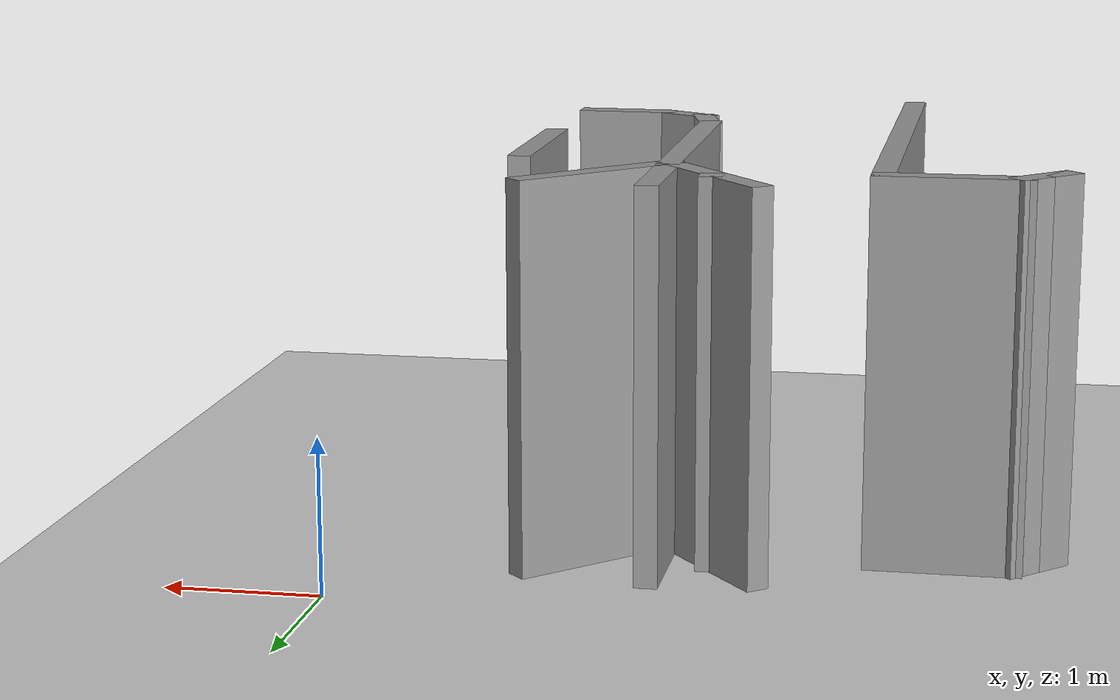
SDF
<sdf version="1.7">
 <world name="default">
  <model name="ground_plane">
   <static>1</static>
   <link name="link">
    <collision name="collision">
     <geometry><plane><normal>0 0 1</normal><size>100 100</size></plane></geometry>
     <surface>
      <contact><collide_bitmask>65535</collide_bitmask></contact>
      <friction><ode><mu>100</mu><mu2>50</mu2></ode></friction>
     </surface>
    </collision>
    <visual name="visual">
     <cast_shadows>0</cast_shadows>
     <geometry><plane><normal>0 0 1</normal><size>100 100</size></plane></geometry>
     <material>
      <script><uri>file://media/materials/scripts/gazebo.material</uri><name>Gazebo/Grey</name></script>
     </material>
    </visual>
   </link>
  </model>
  <model name="Race_Track">
   <link name="Wall_140">
    <pose>-4.80261 -0.885012 0 0 -0 0.785398</pose>
    <visual name="Wall_140_Visual">
     <pose>0 0 1.25 0 -0 0</pose>
     <geometry><box><size>0.25 0.15 2.5</size></box></geometry>
     <material>
      <script><uri>file://media/materials/scripts/gazebo.material</uri><name>Gazebo/Grey</name></script>
      <ambient>1 1 1 1</ambient>
      <shader type="pixel"/>
     </material>
     <meta><layer>0</layer></meta>
    </visual>
    <collision name="Wall_140_Collision">
     <pose>0 0 1.25 0 -0 0</pose>
     <geometry><box><size>0.25 0.15 2.5</size></box></geometry>
     <surface>
      <friction>
       <ode><mu>1</mu><mu2>1</mu2><fdir1>0 0 0</fdir1><slip1>0</slip1><slip2>0</slip2></ode>
       <torsional>
        <coefficient>1</coefficient>
        <patch_radius>0</patch_radius>
        <surface_radius>0</surface_radius>
        <use_patch_radius>1</use_patch_radius>
        <ode><slip>0</slip></ode>
       </torsional>
      </friction>
      <bounce><restitution_coefficient>0</restitution_coefficient><threshold>1e+06</threshold></bounce>
      <contact>
       <collide_without_contact>0</collide_without_contact>
       <collide_without_contact_bitmask>1</collide_without_contact_bitmask>
       <collide_bitmask>1</collide_bitmask>
       <ode>
        <soft_cfm>0</soft_cfm>
        <soft_erp>0.2</soft_erp>
        <kp>1e+13</kp>
        <kd>1</kd>
        <max_vel>0.01</max_vel>
        <min_depth>0</min_depth>
       </ode>
       <bullet>
        <split_impulse>1</split_impulse>
        <split_impulse_penetration_threshold>-0.01</split_impulse_penetration_threshold>
        <soft_cfm>0</soft_cfm>
        <soft_erp>0.2</soft_erp>
        <kp>1e+13</kp>
        <kd>1</kd>
       </bullet>
      </contact>
     </surface>
    </collision>
   </link>
   <link name="Wall_150">
    <pose>-4.71422 -0.796623 0 0 -0 0.785398</pose>
    <visual name="Wall_150_Visual">
     <pose>0 0 1.25 0 -0 0</pose>
     <geometry><box><size>0.5 0.15 2.5</size></box></geometry>
     <material>
      <script><uri>file://media/materials/scripts/gazebo.material</uri><name>Gazebo/Grey</name></script>
      <ambient>1 1 1 1</ambient>
      <shader type="pixel"/>
     </material>
     <meta><layer>0</layer></meta>
    </visual>
    <collision name="Wall_150_Collision">
     <pose>0 0 1.25 0 -0 0</pose>
     <geometry><box><size>0.5 0.15 2.5</size></box></geometry>
     <surface>
      <friction>
       <ode><mu>1</mu><mu2>1</mu2><fdir1>0 0 0</fdir1><slip1>0</slip1><slip2>0</slip2></ode>
       <torsional>
        <coefficient>1</coefficient>
        <patch_radius>0</patch_radius>
        <surface_radius>0</surface_radius>
        <use_patch_radius>1</use_patch_radius>
        <ode><slip>0</slip></ode>
       </torsional>
      </friction>
      <bounce><restitution_coefficient>0</restitution_coefficient><threshold>1e+06</threshold></bounce>
      <contact>
       <collide_without_contact>0</collide_without_contact>
       <collide_without_contact_bitmask>1</collide_without_contact_bitmask>
       <collide_bitmask>1</collide_bitmask>
       <ode>
        <soft_cfm>0</soft_cfm>
        <soft_erp>0.2</soft_erp>
        <kp>1e+13</kp>
        <kd>1</kd>
        <max_vel>0.01</max_vel>
        <min_depth>0</min_depth>
       </ode>
       <bullet>
        <split_impulse>1</split_impulse>
        <split_impulse_penetration_threshold>-0.01</split_impulse_penetration_threshold>
        <soft_cfm>0</soft_cfm>
        <soft_erp>0.2</soft_erp>
        <kp>1e+13</kp>
        <kd>1</kd>
       </bullet>
      </contact>
     </surface>
    </collision>
   </link>
   <link name="Wall_151">
    <pose>-4.16548 -0.67288 0 0 -0 0</pose>
    <visual name="Wall_151_Visual">
     <pose>0 0 1.25 0 -0 0</pose>
     <geometry><box><size>1 0.15 2.5</size></box></geometry>
     <material>
      <script><uri>file://media/materials/scripts/gazebo.material</uri><name>Gazebo/Grey</name></script>
      <ambient>1 1 1 1</ambient>
      <shader type="pixel"/>
     </material>
     <meta><layer>0</layer></meta>
    </visual>
    <collision name="Wall_151_Collision">
     <pose>0 0 1.25 0 -0 0</pose>
     <geometry><box><size>1 0.15 2.5</size></box></geometry>
     <surface>
      <friction>
       <ode><mu>1</mu><mu2>1</mu2><fdir1>0 0 0</fdir1><slip1>0</slip1><slip2>0</slip2></ode>
       <torsional>
        <coefficient>1</coefficient>
        <patch_radius>0</patch_radius>
        <surface_radius>0</surface_radius>
        <use_patch_radius>1</use_patch_radius>
        <ode><slip>0</slip></ode>
       </torsional>
      </friction>
      <bounce><restitution_coefficient>0</restitution_coefficient><threshold>1e+06</threshold></bounce>
      <contact>
       <collide_without_contact>0</collide_without_contact>
       <collide_without_contact_bitmask>1</collide_without_contact_bitmask>
       <collide_bitmask>1</collide_bitmask>
       <ode>
        <soft_cfm>0</soft_cfm>
        <soft_erp>0.2</soft_erp>
        <kp>1e+13</kp>
        <kd>1</kd>
        <max_vel>0.01</max_vel>
        <min_depth>0</min_depth>
       </ode>
       <bullet>
        <split_impulse>1</split_impulse>
        <split_impulse_penetration_threshold>-0.01</split_impulse_penetration_threshold>
        <soft_cfm>0</soft_cfm>
        <soft_erp>0.2</soft_erp>
        <kp>1e+13</kp>
        <kd>1</kd>
       </bullet>
      </contact>
     </surface>
    </collision>
   </link>
   <link name="Wall_155">
    <pose>-2.39048 -0.49788 0 0 -0 1.5708</pose>
    <visual name="Wall_155_Visual">
     <pose>0 0 1.25 0 -0 0</pose>
     <geometry><box><size>1 0.15 2.5</size></box></geometry>
     <material>
      <script><uri>file://media/materials/scripts/gazebo.material</uri><name>Gazebo/Grey</name></script>
      <ambient>1 1 1 1</ambient>
      <shader type="pixel"/>
     </material>
     <meta><layer>0</layer></meta>
    </visual>
    <collision name="Wall_155_Collision">
     <pose>0 0 1.25 0 -0 0</pose>
     <geometry><box><size>1 0.15 2.5</size></box></geometry>
     <surface>
      <friction>
       <ode><mu>1</mu><mu2>1</mu2><fdir1>0 0 0</fdir1><slip1>0</slip1><slip2>0</slip2></ode>
       <torsional>
        <coefficient>1</coefficient>
        <patch_radius>0</patch_radius>
        <surface_radius>0</surface_radius>
        <use_patch_radius>1</use_patch_radius>
        <ode><slip>0</slip></ode>
       </torsional>
      </friction>
      <bounce><restitution_coefficient>0</restitution_coefficient><threshold>1e+06</threshold></bounce>
      <contact>
       <collide_without_contact>0</collide_without_contact>
       <collide_without_contact_bitmask>1</collide_without_contact_bitmask>
       <collide_bitmask>1</collide_bitmask>
       <ode>
        <soft_cfm>0</soft_cfm>
        <soft_erp>0.2</soft_erp>
        <kp>1e+13</kp>
        <kd>1</kd>
        <max_vel>0.01</max_vel>
        <min_depth>0</min_depth>
       </ode>
       <bullet>
        <split_impulse>1</split_impulse>
        <split_impulse_penetration_threshold>-0.01</split_impulse_penetration_threshold>
        <soft_cfm>0</soft_cfm>
        <soft_erp>0.2</soft_erp>
        <kp>1e+13</kp>
        <kd>1</kd>
       </bullet>
      </contact>
     </surface>
    </collision>
   </link>
   <link name="Wall_157">
    <pose>-3.74048 -2.34788 0 0 0 -1.5708</pose>
    <visual name="Wall_157_Visual">
     <pose>0 0 1.25 0 -0 0</pose>
     <geometry><box><size>3.5 0.15 2.5</size></box></geometry>
     <material>
      <script><uri>file://media/materials/scripts/gazebo.material</uri><name>Gazebo/Grey</name></script>
      <ambient>1 1 1 1</ambient>
      <shader type="pixel"/>
     </material>
     <meta><layer>0</layer></meta>
    </visual>
    <collision name="Wall_157_Collision">
     <pose>0 0 1.25 0 -0 0</pose>
     <geometry><box><size>3.5 0.15 2.5</size></box></geometry>
     <surface>
      <friction>
       <ode><mu>1</mu><mu2>1</mu2><fdir1>0 0 0</fdir1><slip1>0</slip1><slip2>0</slip2></ode>
       <torsional>
        <coefficient>1</coefficient>
        <patch_radius>0</patch_radius>
        <surface_radius>0</surface_radius>
        <use_patch_radius>1</use_patch_radius>
        <ode><slip>0</slip></ode>
       </torsional>
      </friction>
      <bounce><restitution_coefficient>0</restitution_coefficient><threshold>1e+06</threshold></bounce>
      <contact>
       <collide_without_contact>0</collide_without_contact>
       <collide_without_contact_bitmask>1</collide_without_contact_bitmask>
       <collide_bitmask>1</collide_bitmask>
       <ode>
        <soft_cfm>0</soft_cfm>
        <soft_erp>0.2</soft_erp>
        <kp>1e+13</kp>
        <kd>1</kd>
        <max_vel>0.01</max_vel>
        <min_depth>0</min_depth>
       </ode>
       <bullet>
        <split_impulse>1</split_impulse>
        <split_impulse_penetration_threshold>-0.01</split_impulse_penetration_threshold>
        <soft_cfm>0</soft_cfm>
        <soft_erp>0.2</soft_erp>
        <kp>1e+13</kp>
        <kd>1</kd>
       </bullet>
      </contact>
     </surface>
    </collision>
   </link>
   <link name="Wall_162">
    <pose>-2.71632 -0.461343 0 0 -0 0</pose>
    <visual name="Wall_162_Visual">
     <pose>0 0 1.25 0 -0 0</pose>
     <geometry><box><size>0.15 0.15 2.5</size></box></geometry>
     <material>
      <script><uri>file://media/materials/scripts/gazebo.material</uri><name>Gazebo/Grey</name></script>
      <ambient>1 1 1 1</ambient>
      <shader type="pixel"/>
     </material>
     <meta><layer>0</layer></meta>
    </visual>
    <collision name="Wall_162_Collision">
     <pose>0 0 1.25 0 -0 0</pose>
     <geometry><box><size>0.15 0.15 2.5</size></box></geometry>
     <surface>
      <friction>
       <ode><mu>1</mu><mu2>1</mu2><fdir1>0 0 0</fdir1><slip1>0</slip1><slip2>0</slip2></ode>
       <torsional>
        <coefficient>1</coefficient>
        <patch_radius>0</patch_radius>
        <surface_radius>0</surface_radius>
        <use_patch_radius>1</use_patch_radius>
        <ode><slip>0</slip></ode>
       </torsional>
      </friction>
      <bounce><restitution_coefficient>0</restitution_coefficient><threshold>1e+06</threshold></bounce>
      <contact>
       <collide_without_contact>0</collide_without_contact>
       <collide_without_contact_bitmask>1</collide_without_contact_bitmask>
       <collide_bitmask>1</collide_bitmask>
       <ode>
        <soft_cfm>0</soft_cfm>
        <soft_erp>0.2</soft_erp>
        <kp>1e+13</kp>
        <kd>1</kd>
        <max_vel>0.01</max_vel>
        <min_depth>0</min_depth>
       </ode>
       <bullet>
        <split_impulse>1</split_impulse>
        <split_impulse_penetration_threshold>-0.01</split_impulse_penetration_threshold>
        <soft_cfm>0</soft_cfm>
        <soft_erp>0.2</soft_erp>
        <kp>1e+13</kp>
        <kd>1</kd>
       </bullet>
      </contact>
     </surface>
    </collision>
   </link>
   <link name="Wall_164">
    <pose>-2.70819 -0.533012 0 0 0 -0.887011</pose>
    <visual name="Wall_164_Visual">
     <pose>0 0 1.25 0 -0 0</pose>
     <geometry><box><size>1.15587 0.15 2.5</size></box></geometry>
     <material>
      <script><uri>file://media/materials/scripts/gazebo.material</uri><name>Gazebo/Grey</name></script>
      <ambient>1 1 1 1</ambient>
      <shader type="pixel"/>
     </material>
     <meta><layer>0</layer></meta>
    </visual>
    <collision name="Wall_164_Collision">
     <pose>0 0 1.25 0 -0 0</pose>
     <geometry><box><size>1.15587 0.15 2.5</size></box></geometry>
     <surface>
      <friction>
       <ode><mu>1</mu><mu2>1</mu2><fdir1>0 0 0</fdir1><slip1>0</slip1><slip2>0</slip2></ode>
       <torsional>
        <coefficient>1</coefficient>
        <patch_radius>0</patch_radius>
        <surface_radius>0</surface_radius>
        <use_patch_radius>1</use_patch_radius>
        <ode><slip>0</slip></ode>
       </torsional>
      </friction>
      <bounce><restitution_coefficient>0</restitution_coefficient><threshold>1e+06</threshold></bounce>
      <contact>
       <collide_without_contact>0</collide_without_contact>
       <collide_without_contact_bitmask>1</collide_without_contact_bitmask>
       <collide_bitmask>1</collide_bitmask>
       <ode>
        <soft_cfm>0</soft_cfm>
        <soft_erp>0.2</soft_erp>
        <kp>1e+13</kp>
        <kd>1</kd>
        <max_vel>0.01</max_vel>
        <min_depth>0</min_depth>
       </ode>
       <bullet>
        <split_impulse>1</split_impulse>
        <split_impulse_penetration_threshold>-0.01</split_impulse_penetration_threshold>
        <soft_cfm>0</soft_cfm>
        <soft_erp>0.2</soft_erp>
        <kp>1e+13</kp>
        <kd>1</kd>
       </bullet>
      </contact>
     </surface>
    </collision>
   </link>
   <link name="Wall_166">
    <pose>-2.39048 -1.84788 0 0 0 -1.5708</pose>
    <visual name="Wall_166_Visual">
     <pose>0 0 1.25 0 -0 0</pose>
     <geometry><box><size>2 0.15 2.5</size></box></geometry>
     <material>
      <script><uri>file://media/materials/scripts/gazebo.material</uri><name>Gazebo/Grey</name></script>
      <ambient>1 1 1 1</ambient>
      <shader type="pixel"/>
     </material>
     <meta><layer>0</layer></meta>
    </visual>
    <collision name="Wall_166_Collision">
     <pose>0 0 1.25 0 -0 0</pose>
     <geometry><box><size>2 0.15 2.5</size></box></geometry>
     <surface>
      <friction>
       <ode><mu>1</mu><mu2>1</mu2><fdir1>0 0 0</fdir1><slip1>0</slip1><slip2>0</slip2></ode>
       <torsional>
        <coefficient>1</coefficient>
        <patch_radius>0</patch_radius>
        <surface_radius>0</surface_radius>
        <use_patch_radius>1</use_patch_radius>
        <ode><slip>0</slip></ode>
       </torsional>
      </friction>
      <bounce><restitution_coefficient>0</restitution_coefficient><threshold>1e+06</threshold></bounce>
      <contact>
       <collide_without_contact>0</collide_without_contact>
       <collide_without_contact_bitmask>1</collide_without_contact_bitmask>
       <collide_bitmask>1</collide_bitmask>
       <ode>
        <soft_cfm>0</soft_cfm>
        <soft_erp>0.2</soft_erp>
        <kp>1e+13</kp>
        <kd>1</kd>
        <max_vel>0.01</max_vel>
        <min_depth>0</min_depth>
       </ode>
       <bullet>
        <split_impulse>1</split_impulse>
        <split_impulse_penetration_threshold>-0.01</split_impulse_penetration_threshold>
        <soft_cfm>0</soft_cfm>
        <soft_erp>0.2</soft_erp>
        <kp>1e+13</kp>
        <kd>1</kd>
       </bullet>
      </contact>
     </surface>
    </collision>
   </link>
   <link name="Wall_167">
    <pose>-2.34518 -2.94192 0 0 0 -1.309</pose>
    <visual name="Wall_167_Visual">
     <pose>0 0 1.25 0 -0 0</pose>
     <geometry><box><size>0.5 0.15 2.5</size></box></geometry>
     <material>
      <script><uri>file://media/materials/scripts/gazebo.material</uri><name>Gazebo/Grey</name></script>
      <ambient>1 1 1 1</ambient>
      <shader type="pixel"/>
     </material>
     <meta><layer>0</layer></meta>
    </visual>
    <collision name="Wall_167_Collision">
     <pose>0 0 1.25 0 -0 0</pose>
     <geometry><box><size>0.5 0.15 2.5</size></box></geometry>
     <surface>
      <friction>
       <ode><mu>1</mu><mu2>1</mu2><fdir1>0 0 0</fdir1><slip1>0</slip1><slip2>0</slip2></ode>
       <torsional>
        <coefficient>1</coefficient>
        <patch_radius>0</patch_radius>
        <surface_radius>0</surface_radius>
        <use_patch_radius>1</use_patch_radius>
        <ode><slip>0</slip></ode>
       </torsional>
      </friction>
      <bounce><restitution_coefficient>0</restitution_coefficient><threshold>1e+06</threshold></bounce>
      <contact>
       <collide_without_contact>0</collide_without_contact>
       <collide_without_contact_bitmask>1</collide_without_contact_bitmask>
       <collide_bitmask>1</collide_bitmask>
       <ode>
        <soft_cfm>0</soft_cfm>
        <soft_erp>0.2</soft_erp>
        <kp>1e+13</kp>
        <kd>1</kd>
        <max_vel>0.01</max_vel>
        <min_depth>0</min_depth>
       </ode>
       <bullet>
        <split_impulse>1</split_impulse>
        <split_impulse_penetration_threshold>-0.01</split_impulse_penetration_threshold>
        <soft_cfm>0</soft_cfm>
        <soft_erp>0.2</soft_erp>
        <kp>1e+13</kp>
        <kd>1</kd>
       </bullet>
      </contact>
     </surface>
    </collision>
   </link>
   <link name="Wall_168">
    <pose>-2.14833 -3.19845 0 0 0 -0.523599</pose>
    <visual name="Wall_168_Visual">
     <pose>0 0 1.25 0 -0 0</pose>
     <geometry><box><size>0.5 0.15 2.5</size></box></geometry>
     <material>
      <script><uri>file://media/materials/scripts/gazebo.material</uri><name>Gazebo/Grey</name></script>
      <ambient>1 1 1 1</ambient>
      <shader type="pixel"/>
     </material>
     <meta><layer>0</layer></meta>
    </visual>
    <collision name="Wall_168_Collision">
     <pose>0 0 1.25 0 -0 0</pose>
     <geometry><box><size>0.5 0.15 2.5</size></box></geometry>
     <surface>
      <friction>
       <ode><mu>1</mu><mu2>1</mu2><fdir1>0 0 0</fdir1><slip1>0</slip1><slip2>0</slip2></ode>
       <torsional>
        <coefficient>1</coefficient>
        <patch_radius>0</patch_radius>
        <surface_radius>0</surface_radius>
        <use_patch_radius>1</use_patch_radius>
        <ode><slip>0</slip></ode>
       </torsional>
      </friction>
      <bounce><restitution_coefficient>0</restitution_coefficient><threshold>1e+06</threshold></bounce>
      <contact>
       <collide_without_contact>0</collide_without_contact>
       <collide_without_contact_bitmask>1</collide_without_contact_bitmask>
       <collide_bitmask>1</collide_bitmask>
       <ode>
        <soft_cfm>0</soft_cfm>
        <soft_erp>0.2</soft_erp>
        <kp>1e+13</kp>
        <kd>1</kd>
        <max_vel>0.01</max_vel>
        <min_depth>0</min_depth>
       </ode>
       <bullet>
        <split_impulse>1</split_impulse>
        <split_impulse_penetration_threshold>-0.01</split_impulse_penetration_threshold>
        <soft_cfm>0</soft_cfm>
        <soft_erp>0.2</soft_erp>
        <kp>1e+13</kp>
        <kd>1</kd>
       </bullet>
      </contact>
     </surface>
    </collision>
   </link>
   <link name="Wall_169">
    <pose>-1.72568 -3.29318 0 0 0 -0.026649</pose>
    <visual name="Wall_169_Visual">
     <pose>0 0 1.25 0 -0 0</pose>
     <geometry><box><size>0.692384 0.15 2.5</size></box></geometry>
     <material>
      <script><uri>file://media/materials/scripts/gazebo.material</uri><name>Gazebo/Grey</name></script>
      <ambient>1 1 1 1</ambient>
      <shader type="pixel"/>
     </material>
     <meta><layer>0</layer></meta>
    </visual>
    <collision name="Wall_169_Collision">
     <pose>0 0 1.25 0 -0 0</pose>
     <geometry><box><size>0.692384 0.15 2.5</size></box></geometry>
     <surface>
      <friction>
       <ode><mu>1</mu><mu2>1</mu2><fdir1>0 0 0</fdir1><slip1>0</slip1><slip2>0</slip2></ode>
       <torsional>
        <coefficient>1</coefficient>
        <patch_radius>0</patch_radius>
        <surface_radius>0</surface_radius>
        <use_patch_radius>1</use_patch_radius>
        <ode><slip>0</slip></ode>
       </torsional>
      </friction>
      <bounce><restitution_coefficient>0</restitution_coefficient><threshold>1e+06</threshold></bounce>
      <contact>
       <collide_without_contact>0</collide_without_contact>
       <collide_without_contact_bitmask>1</collide_without_contact_bitmask>
       <collide_bitmask>1</collide_bitmask>
       <ode>
        <soft_cfm>0</soft_cfm>
        <soft_erp>0.2</soft_erp>
        <kp>1e+13</kp>
        <kd>1</kd>
        <max_vel>0.01</max_vel>
        <min_depth>0</min_depth>
       </ode>
       <bullet>
        <split_impulse>1</split_impulse>
        <split_impulse_penetration_threshold>-0.01</split_impulse_penetration_threshold>
        <soft_cfm>0</soft_cfm>
        <soft_erp>0.2</soft_erp>
        <kp>1e+13</kp>
        <kd>1</kd>
       </bullet>
      </contact>
     </surface>
    </collision>
   </link>
   <link name="Wall_214">
    <pose>-1.403 -1.63308 0 0 -0 1.5708</pose>
    <visual name="Wall_214_Visual">
     <pose>0 0 1.25 0 -0 0</pose>
     <geometry><box><size>1.25 0.15 2.5</size></box></geometry>
     <material>
      <script><uri>file://media/materials/scripts/gazebo.material</uri><name>Gazebo/Grey</name></script>
      <ambient>1 1 1 1</ambient>
      <shader type="pixel"/>
     </material>
     <meta><layer>0</layer></meta>
    </visual>
    <collision name="Wall_214_Collision">
     <pose>0 0 1.25 0 -0 0</pose>
     <geometry><box><size>1.25 0.15 2.5</size></box></geometry>
     <surface>
      <friction>
       <ode><mu>1</mu><mu2>1</mu2><fdir1>0 0 0</fdir1><slip1>0</slip1><slip2>0</slip2></ode>
       <torsional>
        <coefficient>1</coefficient>
        <patch_radius>0</patch_radius>
        <surface_radius>0</surface_radius>
        <use_patch_radius>1</use_patch_radius>
        <ode><slip>0</slip></ode>
       </torsional>
      </friction>
      <bounce><restitution_coefficient>0</restitution_coefficient><threshold>1e+06</threshold></bounce>
      <contact>
       <collide_without_contact>0</collide_without_contact>
       <collide_without_contact_bitmask>1</collide_without_contact_bitmask>
       <collide_bitmask>1</collide_bitmask>
       <ode>
        <soft_cfm>0</soft_cfm>
        <soft_erp>0.2</soft_erp>
        <kp>1e+13</kp>
        <kd>1</kd>
        <max_vel>0.01</max_vel>
        <min_depth>0</min_depth>
       </ode>
       <bullet>
        <split_impulse>1</split_impulse>
        <split_impulse_penetration_threshold>-0.01</split_impulse_penetration_threshold>
        <soft_cfm>0</soft_cfm>
        <soft_erp>0.2</soft_erp>
        <kp>1e+13</kp>
        <kd>1</kd>
       </bullet>
      </contact>
     </surface>
    </collision>
   </link>
   <link name="Wall_216">
    <pose>-2.00157 -0.533971 0 0 -0 0.785398</pose>
    <visual name="Wall_216_Visual">
     <pose>0 0 1.25 0 -0 0</pose>
     <geometry><box><size>1.25 0.15 2.5</size></box></geometry>
     <material>
      <script><uri>file://media/materials/scripts/gazebo.material</uri><name>Gazebo/Grey</name></script>
      <ambient>1 1 1 1</ambient>
      <shader type="pixel"/>
     </material>
     <meta><layer>0</layer></meta>
    </visual>
    <collision name="Wall_216_Collision">
     <pose>0 0 1.25 0 -0 0</pose>
     <geometry><box><size>1.25 0.15 2.5</size></box></geometry>
     <surface>
      <friction>
       <ode><mu>1</mu><mu2>1</mu2><fdir1>0 0 0</fdir1><slip1>0</slip1><slip2>0</slip2></ode>
       <torsional>
        <coefficient>1</coefficient>
        <patch_radius>0</patch_radius>
        <surface_radius>0</surface_radius>
        <use_patch_radius>1</use_patch_radius>
        <ode><slip>0</slip></ode>
       </torsional>
      </friction>
      <bounce><restitution_coefficient>0</restitution_coefficient><threshold>1e+06</threshold></bounce>
      <contact>
       <collide_without_contact>0</collide_without_contact>
       <collide_without_contact_bitmask>1</collide_without_contact_bitmask>
       <collide_bitmask>1</collide_bitmask>
       <ode>
        <soft_cfm>0</soft_cfm>
        <soft_erp>0.2</soft_erp>
        <kp>1e+13</kp>
        <kd>1</kd>
        <max_vel>0.01</max_vel>
        <min_depth>0</min_depth>
       </ode>
       <bullet>
        <split_impulse>1</split_impulse>
        <split_impulse_penetration_threshold>-0.01</split_impulse_penetration_threshold>
        <soft_cfm>0</soft_cfm>
        <soft_erp>0.2</soft_erp>
        <kp>1e+13</kp>
        <kd>1</kd>
       </bullet>
      </contact>
     </surface>
    </collision>
   </link>
   <model name="bookshelf">
    <static>1</static>
    <link name="link">
     <inertial><mass>1</mass></inertial>
     <collision name="back">
      <pose>0 0.005 0.6 0 -0 0</pose>
      <geometry><box><size>0.9 0.01 1.2</size></box></geometry>
     </collision>
     <visual name="visual1">
      <pose>0 0.005 0.6 0 -0 0</pose>
      <geometry><box><size>0.9 0.01 1.2</size></box></geometry>
      <material>
       <script><uri>file://media/materials/scripts/gazebo.material</uri><name>Gazebo/Wood</name></script>
      </material>
     </visual>
     <collision name="left_side">
      <pose>0.45 -0.195 0.6 0 -0 0</pose>
      <geometry><box><size>0.02 0.4 1.2</size></box></geometry>
     </collision>
     <visual name="visual2">
      <pose>0.45 -0.195 0.6 0 -0 0</pose>
      <geometry><box><size>0.02 0.4 1.2</size></box></geometry>
      <material>
       <script><uri>file://media/materials/scripts/gazebo.material</uri><name>Gazebo/Wood</name></script>
      </material>
     </visual>
     <collision name="right_side">
      <pose>-0.45 -0.195 0.6 0 -0 0</pose>
      <geometry><box><size>0.02 0.4 1.2</size></box></geometry>
     </collision>
     <visual name="visual3">
      <pose>-0.45 -0.195 0.6 0 -0 0</pose>
      <geometry><box><size>0.02 0.4 1.2</size></box></geometry>
      <material>
       <script><uri>file://media/materials/scripts/gazebo.material</uri><name>Gazebo/Wood</name></script>
      </material>
     </visual>
     <collision name="bottom">
      <pose>0 -0.195 0.03 0 -0 0</pose>
      <geometry><box><size>0.88 0.4 0.06</size></box></geometry>
     </collision>
     <visual name="visual4">
      <pose>0 -0.195 0.03 0 -0 0</pose>
      <geometry><box><size>0.88 0.4 0.06</size></box></geometry>
      <material>
       <script><uri>file://media/materials/scripts/gazebo.material</uri><name>Gazebo/Wood</name></script>
      </material>
     </visual>
     <collision name="top">
      <pose>0 -0.195 1.19 0 -0 0</pose>
      <geometry><box><size>0.88 0.4 0.02</size></box></geometry>
     </collision>
     <visual name="visual5">
      <pose>0 -0.195 1.19 0 -0 0</pose>
      <geometry><box><size>0.88 0.4 0.02</size></box></geometry>
      <material>
       <script><uri>file://media/materials/scripts/gazebo.material</uri><name>Gazebo/Wood</name></script>
      </material>
     </visual>
     <collision name="low_shelf">
      <pose>0 -0.195 0.43 0 -0 0</pose>
      <geometry><box><size>0.88 0.4 0.02</size></box></geometry>
     </collision>
     <visual name="visual6">
      <pose>0 -0.195 0.43 0 -0 0</pose>
      <geometry><box><size>0.88 0.4 0.02</size></box></geometry>
      <material>
       <script><uri>file://media/materials/scripts/gazebo.material</uri><name>Gazebo/Wood</name></script>
      </material>
     </visual>
     <collision name="high_shelf">
      <pose>0 -0.195 0.8 0 -0 0</pose>
      <geometry><box><size>0.88 0.4 0.02</size></box></geometry>
     </collision>
     <visual name="visual7">
      <pose>0 -0.195 0.8 0 -0 0</pose>
      <geometry><box><size>0.88 0.4 0.02</size></box></geometry>
      <material>
       <script><uri>file://media/materials/scripts/gazebo.material</uri><name>Gazebo/Wood</name></script>
      </material>
     </visual>
    </link>
    <pose>-1.7139 -4.20805 -0.178331 0 -0 0</pose>
   </model>
   <static>1</static>
   <pose>0.482814 -0.498319 0 0 -0 0</pose>
  </model>
 </world>
</sdf>
